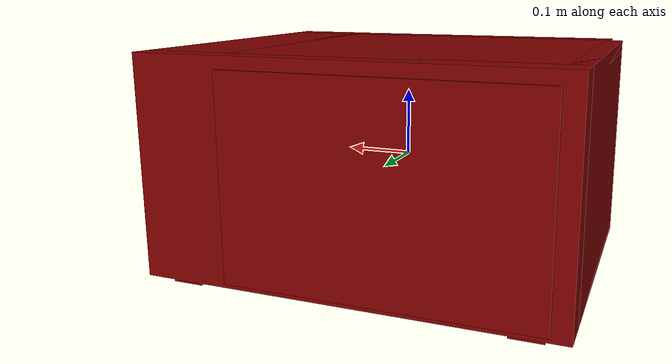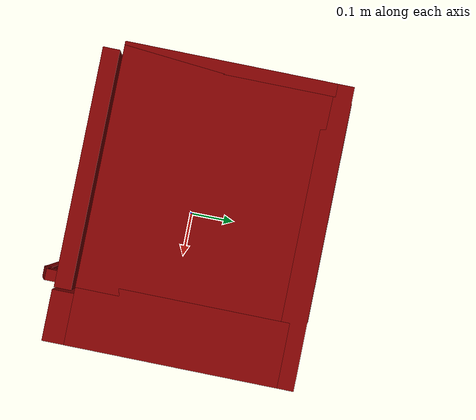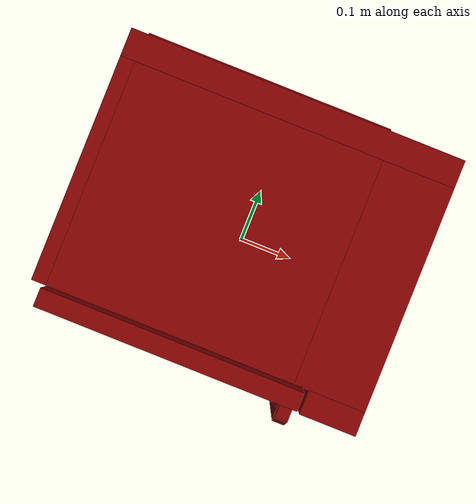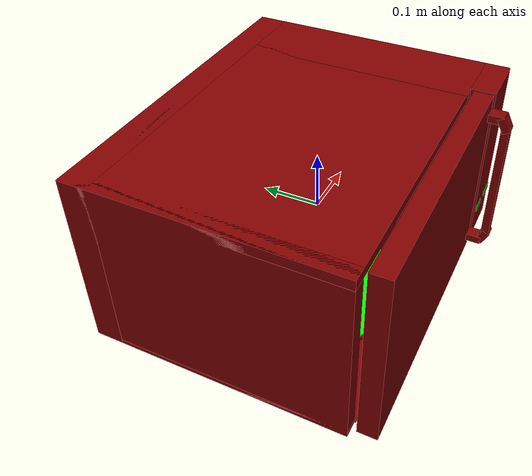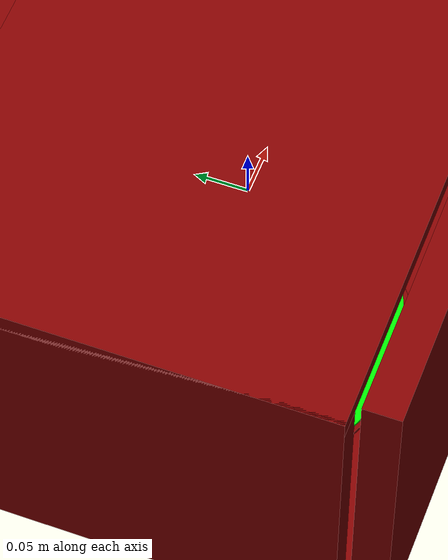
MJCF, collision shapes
<?xml version='1.0' encoding='UTF-8'?>
<mujoco model="model">
  <option timestep="0.002" gravity="0.0 0.0 -9.81"/>
  <compiler angle="radian"/>
  <asset>
    <mesh file="visuals/door.obj" name="door_vis"/>
    <mesh file="visuals/door_Clear.obj" name="door_Clear_vis"/>
    <mesh file="visuals/Body001.obj" name="Body001_vis"/>
    <mesh file="visuals/Disc001.obj" name="Disc001_vis"/>
    <texture file="visuals/T_BC001.png" name="Body001_material" type="2d"/>
    <material name="Body001_material" rgba="1 1 1 1.0" texture="Body001_material" shininess="0.1" specular="2"/>
    <texture file="visuals/T_BC001.png" name="door_material" type="2d"/>
    <material name="door_material" rgba="1 1 1 1.0" texture="door_material" shininess="0.4472135901451111" specular="0.3103448502657381"/>
    <material name="door_Clear_material" rgba="0.04023253172636032 0.04023253172636032 0.04023253172636032 0.800000011920929" shininess="0.4472135901451111" specular="0.3103448502657381"/>
    <texture file="visuals/T_BC001.png" name="Disc001_material" type="2d"/>
    <material name="Disc001_material" rgba="1 1 1 1.0" texture="Disc001_material" shininess="0.4472135901451111" specular="0.3103448502657381"/>
  </asset>
  <default>
    <default class="visual">
      <geom conaffinity="0" contype="0" group="1" type="mesh"/>
    </default>
    <default class="collision">
      <geom group="0" rgba="0.5 0 0 0.5"/>
    </default>
    <default class="spawn">
      <geom group="0" rgba="1 1 1 0.5" contype="0" conaffinity="0"/>
      <site group="0" rgba="1 1 1 0.5"/>
    </default>
    <default class="region">
      <geom group="1" conaffinity="0" contype="0" rgba="0 1 0 0"/>
    </default>
  </default>
  <worldbody>
    <body>
      <body name="object">
        <geom class="collision" type="cylinder" pos="-0.05093691870570183 -0.0042221504263579845 -0.13314302265644073" size="0.1599905788898468 0.00126534269656986" quat="1.0 0.0 0.0 0.0" name="tray" rgba="0 1 0 0.5"/>
        <geom class="collision" type="box" pos="0.22552081942558289 -0.23564757406711578 -0.08424883335828781" size="0.01395593024790287 0.0008166014449670911 0.006888555362820625" quat="1.0 0.0 0.0 0.0" name="stop_button" rgba="0.0 0.5 0 0.5"/>
        <geom class="collision" type="box" pos="0.2804098427295685 -0.23564757406711578 -0.08424883335828781" size="0.015653330832719803 0.000816602143459022 0.006888548377901316" quat="1.0 0.0 0.0 0.0" name="start_button" rgba="0.0 0.5 0 0.5"/>
        <geom mesh="Body001_vis" type="mesh" solimp="0.998 0.998 0.001" solref="0.001 1" friction="0.95 0.3 0.1" class="visual" material="Body001_material"/>
        <geom class="collision" type="box" pos="-1.190901821601642e-09 0.2390269637107849 0.00988061260432005" size="0.30162569880485535 0.02512819878757 0.16083979606628418" quat="1.0 0.0 0.0 0.0"/>
        <geom class="collision" type="box" pos="-0.2886383533477783 0.02005074732005596 0.00988061260432005" size="0.012987308204174042 0.2110396772623062 0.16083979606628418" quat="1.0 0.0 0.0 0.0"/>
        <geom class="collision" type="box" pos="0.23728355765342712 0.020050739869475365 0.009880619123578072" size="0.06434216350317001 0.2110396772623062 0.16083979606628418" quat="1.0 0.0 0.0 0.0"/>
        <geom class="collision" type="box" pos="-0.057057738304138184 0.020020976662635803 0.1617991179227829" size="0.24456793069839478 0.2110099494457245 0.008921293541789055" quat="1.0 0.0 0.0 0.0"/>
        <geom class="collision" type="box" pos="-0.0572376511991024 0.011454910039901733 -0.14702081680297852" size="0.24438801407814026 0.20244386792182922 0.003938378766179085" quat="1.0 0.0 0.0 0.0"/>
        <geom class="collision" type="box" pos="0.2507769763469696 -0.21267712116241455 0.009880613535642624" size="0.05084872618317604 0.021688152104616165 0.16083979606628418" quat="1.0 0.0 0.0 0.0"/>
        <geom class="collision" type="box" pos="-0.053160786628723145 0.2680196166038513 0.0052278535440564156" size="0.22249023616313934 0.0028153848834335804 0.14764995872974396" quat="1.0 0.0 0.0 0.0"/>
        <geom class="collision" type="cylinder" pos="-0.24814555048942566 -0.16460423171520233 -0.16531674563884735" size="0.009386472404003143 0.005403653718531132" quat="1.0 0.0 0.0 0.0"/>
        <geom class="collision" type="cylinder" pos="0.2484094500541687 -0.16460423171520233 -0.16531674563884735" size="0.009386472404003143 0.005403653718531132" quat="1.0 0.0 0.0 0.0"/>
        <geom class="collision" type="cylinder" pos="-0.24814555048942566 0.2104191929101944 -0.16531674563884735" size="0.009386472404003143 0.005403653718531132" quat="1.0 0.0 0.0 0.0"/>
        <geom class="collision" type="cylinder" pos="0.2484094500541687 0.2104191929101944 -0.16531674563884735" size="0.009386472404003143 0.005403653718531132" quat="1.0 0.0 0.0 0.0"/>
        <geom class="collision" type="box" pos="0.24766157567501068 0.028260039165616035 -0.1566716879606247" size="0.023212481290102005 0.21924901008605957 0.005712490063160658" quat="1.0 0.0 0.0 0.0"/>
        <geom class="collision" type="box" pos="-0.2441413700580597 0.028260039165616035 -0.1566716879606247" size="0.023212481290102005 0.21924901008605957 0.005712490063160658" quat="1.0 0.0 0.0 0.0"/>
        <body name="door">
          <joint axis="0.0 0.0 1.0" pos="-0.28138619661331177 -0.21548300981521606 0.01534305140376091" limited="true" name="microjoint" range="-1.5707963267948966 0.0" type="hinge" damping="1" frictionloss="1" armature=".01" stiffness="0.05"/>
          <geom mesh="door_vis" type="mesh" solimp="0.998 0.998 0.001" solref="0.001 1" friction="0.95 0.3 0.1" class="visual" material="door_material"/>
          <geom class="collision" type="box" pos="-0.043437834829092026 -0.214825838804245 0.005415609106421471" size="0.23866291344165802 0.016925407573580742 0.1653042733669281" quat="1.0 0.0 0.0 0.0" name="door_main"/>
          <geom class="collision" type="box" pos="-0.050455912947654724 -0.22011208534240723 0.008244913071393967" size="0.22454388439655304 0.0053232647478580475 0.12560288608074188" quat="1.0 0.0 0.0 0.0"/>
          <geom class="collision" type="box" pos="0.17858225107192993 -0.26474884152412415 0.013287672773003578" size="0.011482399888336658 0.006993840914219618 0.11189766973257065" quat="1.0 0.0 0.0 0.0" name="door_handle_main"/>
          <geom class="collision" type="box" pos="0.17858225107192993 -0.26080504059791565 0.1333540678024292" size="0.011482416652143002 0.006993862800300121 0.013534482568502426" quat="0.972201943397522 -0.2341439425945282 0.0 0.0"/>
          <geom class="collision" type="box" pos="0.17858225107192993 -0.2462344616651535 0.14169172942638397" size="0.011482416652143002 0.013686439022421837 0.007292632013559341" quat="1.0 0.0 0.0 0.0"/>
          <geom class="collision" type="box" pos="0.17858225107192993 -0.2620128095149994 -0.11061162501573563" size="0.011482416652143002 0.006993862800300121 0.013534482568502426" quat="0.21568623185157776 -0.976462721824646 0.0 0.0"/>
          <geom class="collision" type="box" pos="0.17858225107192993 -0.2462344616651535 -0.12069298326969147" size="0.011482416652143002 0.013686439022421837 0.007292638532817364" quat="1.0 0.0 0.0 0.0"/>
          <body name="door_Clear">
            <geom mesh="door_Clear_vis" type="mesh" solimp="0.998 0.998 0.001" solref="0.001 1" friction="0.95 0.3 0.1" class="visual" material="door_Clear_material"/>
            <geom class="collision" type="box" pos="-0.050455912947654724 -0.22011208534240723 0.008244913071393967" size="0.22454388439655304 0.0053232647478580475 0.12560288608074188" quat="1.0 0.0 0.0 0.0"/>
          </body>
        </body>
        <body name="Disc001">
          <joint axis="0.0 0.0 1.0" pos="-0.050000861287117004 -0.0051429858431220055 -0.1314982920885086" limited="false" name="Disc001_joint" range="0 360" type="hinge" damping="1" frictionloss="1" armature=".01" stiffness="0.05"/>
          <geom mesh="Disc001_vis" type="mesh" solimp="0.998 0.998 0.001" solref="0.001 1" friction="0.95 0.3 0.1" class="visual" material="Disc001_material"/>
          <geom class="collision" type="cylinder" pos="-0.04927751049399376 -0.0068423012271523476 -0.13684891164302826" size="0.161836639046669 0.001988132717087865" quat="1.0 0.0 0.0 0.0"/>
        </body>
        <geom class="region" name="reg_int" type="box" pos="-0.05108684301376343 0.011975541710853577 0.006052382290363312" size="0.21664248204231262 0.19427592849731445 0.13893005794286728"/>
        <geom class="region" name="reg_main" type="box" pos="0.0 0.017091801390051842 0.0" size="0.30262566900253296 0.25474317169189453 0.1717203984260559"/>
      <geom class="region" name="reg_tray" type="cylinder" pos="-0.05093691870570183 -0.0042221504263579845 0.006552380136679858" size="0.1599905788898468 0.13743006009655073"/></body>
    </body>
  </worldbody>
  <actuator>
    <motor name="microjoint_actuator" joint="microjoint" gear="10"/>
    <motor name="Disc001_joint_actuator" joint="Disc001_joint" gear="10"/>
  </actuator>
</mujoco>
